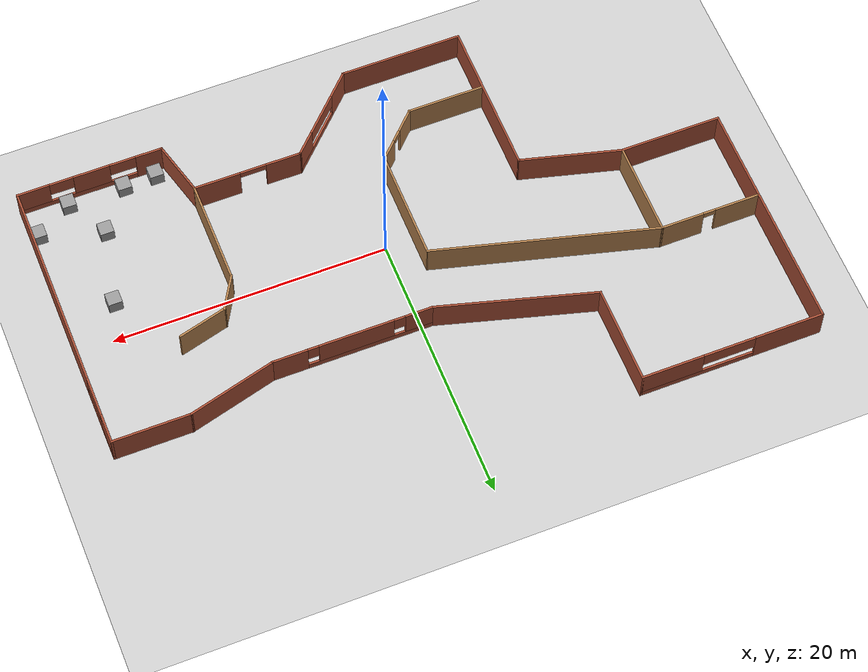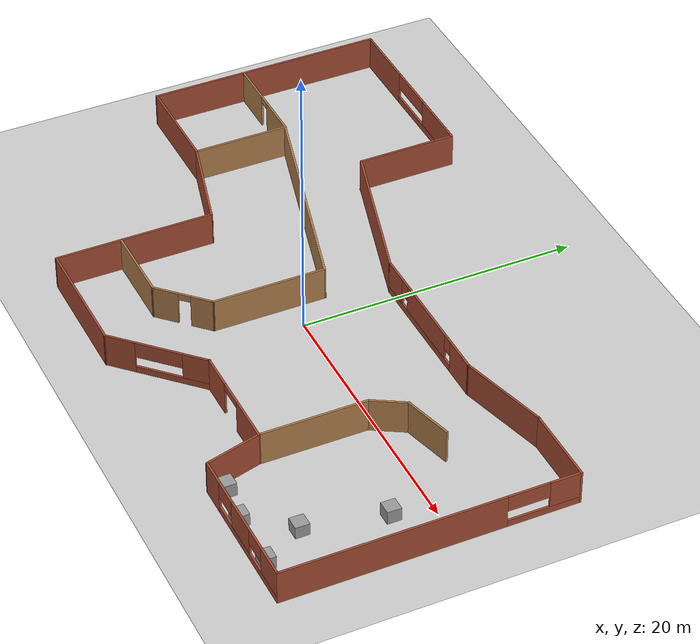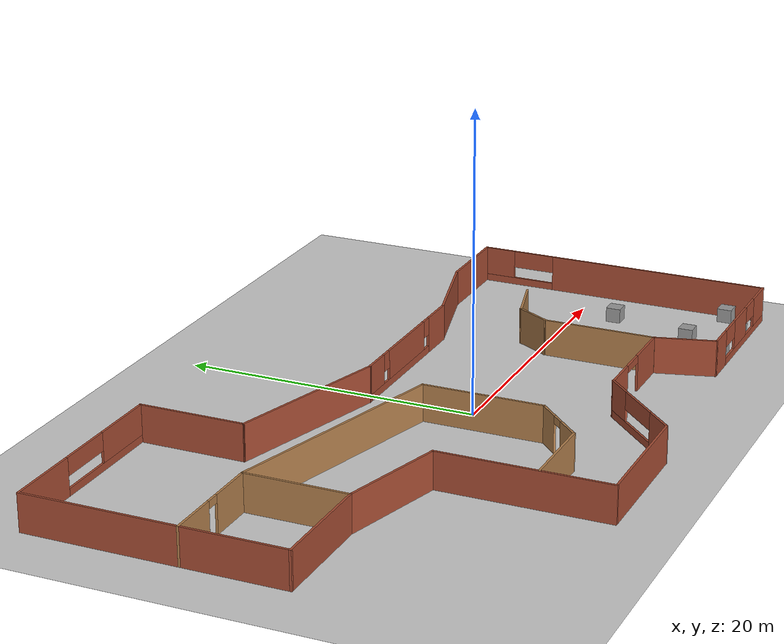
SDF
<sdf version="1.6">
 <world name="default">
  <light name="sun" type="directional">
   <pose>0 0 10 0 -0 0</pose>
   <diffuse>0.8 0.8 0.8 1</diffuse>
   <specular>0.2 0.2 0.2 1</specular>
   <attenuation>
    <range>1000</range>
    <constant>0.9</constant>
    <linear>0.01</linear>
    <quadratic>0.001</quadratic>
   </attenuation>
   <direction>-0.5 0.1 -0.9</direction>
  </light>
  <model name="ground_plane">
   <static>1</static>
   <link name="link">
    <collision name="collision">
     <geometry><plane><normal>0 0 1</normal><size>100 100</size></plane></geometry>
     <surface>
      <contact><collide_bitmask>65535</collide_bitmask></contact>
      <friction><ode><mu>100</mu><mu2>50</mu2></ode></friction>
     </surface>
    </collision>
    <visual name="visual">
     <cast_shadows>0</cast_shadows>
     <geometry><plane><normal>0 0 1</normal><size>100 100</size></plane></geometry>
     <material>
      <script><uri>file://media/materials/scripts/gazebo.material</uri><name>Gazebo/Grey</name></script>
     </material>
    </visual>
   </link>
  </model>
  <gravity>0 0 -9.8</gravity>
  <magnetic_field>6e-06 2.3e-05 -4.2e-05</magnetic_field>
  <atmosphere type="adiabatic"/>
  <physics name="default_physics" default="0" type="ode">
   <max_step_size>0.001</max_step_size>
   <real_time_factor>1</real_time_factor>
   <real_time_update_rate>1000</real_time_update_rate>
  </physics>
  <scene><ambient>0.4 0.4 0.4 1</ambient><background>0.7 0.7 0.7 1</background><shadows>1</shadows></scene>
  <audio><device>default</device></audio>
  <spherical_coordinates>
   <surface_model>EARTH_WGS84</surface_model>
   <latitude_deg>0</latitude_deg>
   <longitude_deg>0</longitude_deg>
   <elevation>0</elevation>
   <heading_deg>0</heading_deg>
  </spherical_coordinates>
  <model name="apartment_1">
   <pose>-1.25367 1.81139 0 0 -0 0</pose>
   <link name="Wall_0">
    <collision name="Wall_0_Collision">
     <geometry><box><size>11.5 0.15 2.5</size></box></geometry>
     <pose>0 0 1.25 0 -0 0</pose>
    </collision>
    <visual name="Wall_0_Visual">
     <pose>0 0 1.25 0 -0 0</pose>
     <geometry><box><size>11.5 0.15 2.5</size></box></geometry>
     <material>
      <script><uri>file://media/materials/scripts/gazebo.material</uri><name>Gazebo/Bricks</name></script>
      <ambient>1 1 1 1</ambient>
     </material>
     <meta><layer>0</layer></meta>
    </visual>
    <pose>-9.55442 -9.48563 0 0 -0 -1.5708</pose>
   </link>
   <link name="Wall_1">
    <collision name="Wall_1_Collision">
     <geometry><box><size>9 0.15 2.5</size></box></geometry>
     <pose>0 0 1.25 0 -0 0</pose>
    </collision>
    <visual name="Wall_1_Visual">
     <pose>0 0 1.25 0 -0 0</pose>
     <geometry><box><size>9 0.15 2.5</size></box></geometry>
     <material>
      <script><uri>file://media/materials/scripts/gazebo.material</uri><name>Gazebo/Bricks</name></script>
      <ambient>1 1 1 1</ambient>
     </material>
     <meta><layer>0</layer></meta>
    </visual>
    <pose>-5.12942 -15.1606 0 0 -0 0</pose>
   </link>
   <link name="Wall_15">
    <collision name="Wall_15_Collision">
     <geometry><box><size>7.5 0.15 2.5</size></box></geometry>
     <pose>0 0 1.25 0 -0 0</pose>
    </collision>
    <visual name="Wall_15_Visual">
     <pose>0 0 1.25 0 -0 0</pose>
     <geometry><box><size>7.5 0.15 2.5</size></box></geometry>
     <material>
      <script><uri>file://media/materials/scripts/gazebo.material</uri><name>Gazebo/Bricks</name></script>
      <ambient>1 1 1 1</ambient>
     </material>
     <meta><layer>0</layer></meta>
    </visual>
    <pose>-13.1042 -2.85947 0 0 -0 2.87979</pose>
   </link>
   <link name="Wall_16">
    <collision name="Wall_16_Collision">
     <geometry><box><size>7.5 0.15 2.5</size></box></geometry>
     <pose>0 0 1.25 0 -0 0</pose>
    </collision>
    <visual name="Wall_16_Visual">
     <pose>0 0 1.25 0 -0 0</pose>
     <geometry><box><size>7.5 0.15 2.5</size></box></geometry>
     <material>
      <script><uri>file://media/materials/scripts/gazebo.material</uri><name>Gazebo/Bricks</name></script>
      <ambient>1 1 1 1</ambient>
     </material>
     <meta><layer>0</layer></meta>
    </visual>
    <pose>-20.329 -1.90831 0 0 -0 3.14159</pose>
   </link>
   <link name="Wall_17">
    <collision name="Wall_17_Collision">
     <geometry><box><size>17.25 0.15 2.5</size></box></geometry>
     <pose>0 0 1.25 0 -0 0</pose>
    </collision>
    <visual name="Wall_17_Visual">
     <pose>0 0 1.25 0 -0 0</pose>
     <geometry><box><size>17.25 0.15 2.5</size></box></geometry>
     <material>
      <script><uri>file://media/materials/scripts/gazebo.material</uri><name>Gazebo/Bricks</name></script>
      <ambient>1 1 1 1</ambient>
     </material>
     <meta><layer>0</layer></meta>
    </visual>
    <pose>-24.004 6.64169 0 0 -0 1.5708</pose>
   </link>
   <link name="Wall_18">
    <pose>-17.329 15.1917 0 0 -0 0</pose>
    <visual name="Wall_18_Visual_0">
     <pose>-4.20454 0 1.25 0 -0 0</pose>
     <geometry><box><size>5.09092 0.15 2.5</size></box></geometry>
     <material>
      <script><uri>file://media/materials/scripts/gazebo.material</uri><name>Gazebo/Bricks</name></script>
      <ambient>1 1 1 1</ambient>
     </material>
     <meta><layer>0</layer></meta>
    </visual>
    <collision name="Wall_18_Collision_0">
     <geometry><box><size>5.09092 0.15 2.5</size></box></geometry>
     <pose>-4.20454 0 1.25 0 -0 0</pose>
    </collision>
    <visual name="Wall_18_Visual_1">
     <pose>2.54546 0 0.25 0 -0 0</pose>
     <geometry><box><size>8.40908 0.15 0.5</size></box></geometry>
     <material>
      <script><uri>file://media/materials/scripts/gazebo.material</uri><name>Gazebo/Bricks</name></script>
      <ambient>1 1 1 1</ambient>
     </material>
     <meta><layer>0</layer></meta>
    </visual>
    <collision name="Wall_18_Collision_1">
     <geometry><box><size>8.40908 0.15 0.5</size></box></geometry>
     <pose>2.54546 0 0.25 0 -0 0</pose>
    </collision>
    <visual name="Wall_18_Visual_2">
     <pose>4.45082 0 1.5 0 -0 0</pose>
     <geometry><box><size>4.59837 0.15 2</size></box></geometry>
     <material>
      <script><uri>file://media/materials/scripts/gazebo.material</uri><name>Gazebo/Bricks</name></script>
      <ambient>1 1 1 1</ambient>
     </material>
     <meta><layer>0</layer></meta>
    </visual>
    <collision name="Wall_18_Collision_2">
     <geometry><box><size>4.59837 0.15 2</size></box></geometry>
     <pose>4.45082 0 1.5 0 -0 0</pose>
    </collision>
    <visual name="Wall_18_Visual_3">
     <pose>0.246279 0 1.9 0 -0 0</pose>
     <geometry><box><size>3.81071 0.15 1.2</size></box></geometry>
     <material>
      <script><uri>file://media/materials/scripts/gazebo.material</uri><name>Gazebo/Bricks</name></script>
      <ambient>1 1 1 1</ambient>
     </material>
     <meta><layer>0</layer></meta>
    </visual>
    <collision name="Wall_18_Collision_3">
     <geometry><box><size>3.81071 0.15 1.2</size></box></geometry>
     <pose>0.246279 0 1.9 0 -0 0</pose>
    </collision>
   </link>
   <link name="Wall_19">
    <collision name="Wall_19_Collision">
     <geometry><box><size>7.25 0.15 2.5</size></box></geometry>
     <pose>0 0 1.25 0 -0 0</pose>
    </collision>
    <visual name="Wall_19_Visual">
     <pose>0 0 1.25 0 -0 0</pose>
     <geometry><box><size>7.25 0.15 2.5</size></box></geometry>
     <material>
      <script><uri>file://media/materials/scripts/gazebo.material</uri><name>Gazebo/Bricks</name></script>
      <ambient>1 1 1 1</ambient>
     </material>
     <meta><layer>0</layer></meta>
    </visual>
    <pose>-10.654 11.6417 0 0 -0 -1.5708</pose>
   </link>
   <link name="Wall_2">
    <pose>1.8942 -12.562 0 0 -0 0.785398</pose>
    <visual name="Wall_2_Visual_0">
     <pose>-2.6428 0 1.25 0 -0 0</pose>
     <geometry><box><size>2.21439 0.15 2.5</size></box></geometry>
     <material>
      <script><uri>file://media/materials/scripts/gazebo.material</uri><name>Gazebo/Bricks</name></script>
      <ambient>1 1 1 1</ambient>
     </material>
     <meta><layer>0</layer></meta>
    </visual>
    <collision name="Wall_2_Collision_0">
     <geometry><box><size>2.21439 0.15 2.5</size></box></geometry>
     <pose>-2.6428 0 1.25 0 -0 0</pose>
    </collision>
    <visual name="Wall_2_Visual_1">
     <pose>1.1072 0 0.25 0 -0 0</pose>
     <geometry><box><size>5.28561 0.15 0.5</size></box></geometry>
     <material>
      <script><uri>file://media/materials/scripts/gazebo.material</uri><name>Gazebo/Bricks</name></script>
      <ambient>1 1 1 1</ambient>
     </material>
     <meta><layer>0</layer></meta>
    </visual>
    <collision name="Wall_2_Collision_1">
     <geometry><box><size>5.28561 0.15 0.5</size></box></geometry>
     <pose>1.1072 0 0.25 0 -0 0</pose>
    </collision>
    <visual name="Wall_2_Visual_2">
     <pose>2.77299 0 1.5 0 -0 0</pose>
     <geometry><box><size>1.95401 0.15 2</size></box></geometry>
     <material>
      <script><uri>file://media/materials/scripts/gazebo.material</uri><name>Gazebo/Bricks</name></script>
      <ambient>1 1 1 1</ambient>
     </material>
     <meta><layer>0</layer></meta>
    </visual>
    <collision name="Wall_2_Collision_2">
     <geometry><box><size>1.95401 0.15 2</size></box></geometry>
     <pose>2.77299 0 1.5 0 -0 0</pose>
    </collision>
    <visual name="Wall_2_Visual_3">
     <pose>0.130189 0 1.9 0 -0 0</pose>
     <geometry><box><size>3.3316 0.15 1.2</size></box></geometry>
     <material>
      <script><uri>file://media/materials/scripts/gazebo.material</uri><name>Gazebo/Bricks</name></script>
      <ambient>1 1 1 1</ambient>
     </material>
     <meta><layer>0</layer></meta>
    </visual>
    <collision name="Wall_2_Collision_3">
     <geometry><box><size>3.3316 0.15 1.2</size></box></geometry>
     <pose>0.130189 0 1.9 0 -0 0</pose>
    </collision>
   </link>
   <link name="Wall_20">
    <collision name="Wall_20_Collision">
     <geometry><box><size>11.6646 0.15 2.5</size></box></geometry>
     <pose>0 0 1.25 0 -0 0</pose>
    </collision>
    <visual name="Wall_20_Visual">
     <pose>0 0 1.25 0 -0 0</pose>
     <geometry><box><size>11.6646 0.15 2.5</size></box></geometry>
     <material>
      <script><uri>file://media/materials/scripts/gazebo.material</uri><name>Gazebo/Bricks</name></script>
      <ambient>1 1 1 1</ambient>
     </material>
     <meta><layer>0</layer></meta>
    </visual>
    <pose>-5.11256 6.5299 0 0 -0 -0.274714</pose>
   </link>
   <link name="Wall_22">
    <collision name="Wall_22_Collision">
     <geometry><box><size>7.75 0.15 2.5</size></box></geometry>
     <pose>0 0 1.25 0 -0 0</pose>
    </collision>
    <visual name="Wall_22_Visual">
     <pose>0 0 1.25 0 -0 0</pose>
     <geometry><box><size>7.75 0.15 2.5</size></box></geometry>
     <material>
      <script><uri>file://media/materials/scripts/gazebo.material</uri><name>Gazebo/Wood</name></script>
      <ambient>1 1 1 1</ambient>
     </material>
     <meta><layer>0</layer></meta>
    </visual>
    <pose>12.3428 -6.16339 0 0 -0 1.5708</pose>
   </link>
   <link name="Wall_3">
    <pose>8.41782 -9.96339 0 0 -0 0</pose>
    <visual name="Wall_3_Visual_0">
     <pose>-2.68299 0 1.25 0 -0 0</pose>
     <geometry><box><size>2.63402 0.15 2.5</size></box></geometry>
     <material>
      <script><uri>file://media/materials/scripts/gazebo.material</uri><name>Gazebo/Bricks</name></script>
      <ambient>1 1 1 1</ambient>
     </material>
     <meta><layer>0</layer></meta>
    </visual>
    <collision name="Wall_3_Collision_0">
     <geometry><box><size>2.63402 0.15 2.5</size></box></geometry>
     <pose>-2.68299 0 1.25 0 -0 0</pose>
    </collision>
    <visual name="Wall_3_Visual_1">
     <pose>2.27617 0 1.25 0 -0 0</pose>
     <geometry><box><size>3.44766 0.15 2.5</size></box></geometry>
     <material>
      <script><uri>file://media/materials/scripts/gazebo.material</uri><name>Gazebo/Bricks</name></script>
      <ambient>1 1 1 1</ambient>
     </material>
     <meta><layer>0</layer></meta>
    </visual>
    <collision name="Wall_3_Collision_1">
     <geometry><box><size>3.44766 0.15 2.5</size></box></geometry>
     <pose>2.27617 0 1.25 0 -0 0</pose>
    </collision>
    <visual name="Wall_3_Visual_2">
     <pose>-0.406822 0 2.25 0 -0 0</pose>
     <geometry><box><size>1.91833 0.15 0.5</size></box></geometry>
     <material>
      <script><uri>file://media/materials/scripts/gazebo.material</uri><name>Gazebo/Bricks</name></script>
      <ambient>1 1 1 1</ambient>
     </material>
     <meta><layer>0</layer></meta>
    </visual>
    <collision name="Wall_3_Collision_2">
     <geometry><box><size>1.91833 0.15 0.5</size></box></geometry>
     <pose>-0.406822 0 2.25 0 -0 0</pose>
    </collision>
   </link>
   <link name="Wall_31">
    <collision name="Wall_31_Collision">
     <geometry><box><size>7 0.15 2.5</size></box></geometry>
     <pose>0 0 1.25 0 -0 0</pose>
    </collision>
    <visual name="Wall_31_Visual">
     <pose>0 0 1.25 0 -0 0</pose>
     <geometry><box><size>7 0.15 2.5</size></box></geometry>
     <material>
      <script><uri>file://media/materials/scripts/gazebo.material</uri><name>Gazebo/Wood</name></script>
      <ambient>1 1 1 1</ambient>
     </material>
     <meta><layer>0</layer></meta>
    </visual>
    <pose>-16.654 1.51669 0 0 -0 1.5708</pose>
   </link>
   <link name="Wall_32">
    <collision name="Wall_32_Collision">
     <geometry><box><size>16.5 0.15 2.5</size></box></geometry>
     <pose>0 0 1.25 0 -0 0</pose>
    </collision>
    <visual name="Wall_32_Visual">
     <pose>0 0 1.25 0 -0 0</pose>
     <geometry><box><size>16.5 0.15 2.5</size></box></geometry>
     <material>
      <script><uri>file://media/materials/scripts/gazebo.material</uri><name>Gazebo/Wood</name></script>
      <ambient>1 1 1 1</ambient>
     </material>
     <meta><layer>0</layer></meta>
    </visual>
    <pose>-8.75753 2.82585 0 0 -0 -0.261799</pose>
   </link>
   <link name="Wall_33">
    <collision name="Wall_33_Collision">
     <geometry><box><size>8.25 0.15 2.5</size></box></geometry>
     <pose>0 0 1.25 0 -0 0</pose>
    </collision>
    <visual name="Wall_33_Visual">
     <pose>0 0 1.25 0 -0 0</pose>
     <geometry><box><size>8.25 0.15 2.5</size></box></geometry>
     <material>
      <script><uri>file://media/materials/scripts/gazebo.material</uri><name>Gazebo/Wood</name></script>
      <ambient>1 1 1 1</ambient>
     </material>
     <meta><layer>0</layer></meta>
    </visual>
    <pose>-0.861087 -3.34 0 0 -0 -1.5708</pose>
   </link>
   <link name="Wall_34">
    <pose>-2.39904 -8.92796 0 0 -0 -2.35619</pose>
    <visual name="Wall_34_Visual_0">
     <pose>-1.40435 0 1.25 0 -0 0</pose>
     <geometry><box><size>1.6913 0.15 2.5</size></box></geometry>
     <material>
      <script><uri>file://media/materials/scripts/gazebo.material</uri><name>Gazebo/Wood</name></script>
      <ambient>1 1 1 1</ambient>
     </material>
     <meta><layer>0</layer></meta>
    </visual>
    <collision name="Wall_34_Collision_0">
     <geometry><box><size>1.6913 0.15 2.5</size></box></geometry>
     <pose>-1.40435 0 1.25 0 -0 0</pose>
    </collision>
    <visual name="Wall_34_Visual_1">
     <pose>1.29565 0 1.25 0 -0 0</pose>
     <geometry><box><size>1.9087 0.15 2.5</size></box></geometry>
     <material>
      <script><uri>file://media/materials/scripts/gazebo.material</uri><name>Gazebo/Wood</name></script>
      <ambient>1 1 1 1</ambient>
     </material>
     <meta><layer>0</layer></meta>
    </visual>
    <collision name="Wall_34_Collision_1">
     <geometry><box><size>1.9087 0.15 2.5</size></box></geometry>
     <pose>1.29565 0 1.25 0 -0 0</pose>
    </collision>
    <visual name="Wall_34_Visual_2">
     <pose>-0.108703 0 2.25 0 -0 0</pose>
     <geometry><box><size>0.9 0.15 0.5</size></box></geometry>
     <material>
      <script><uri>file://media/materials/scripts/gazebo.material</uri><name>Gazebo/Wood</name></script>
      <ambient>1 1 1 1</ambient>
     </material>
     <meta><layer>0</layer></meta>
    </visual>
    <collision name="Wall_34_Collision_2">
     <geometry><box><size>0.9 0.15 0.5</size></box></geometry>
     <pose>-0.108703 0 2.25 0 -0 0</pose>
    </collision>
   </link>
   <link name="Wall_35">
    <collision name="Wall_35_Collision">
     <geometry><box><size>5.75 0.15 2.5</size></box></geometry>
     <pose>0 0 1.25 0 -0 0</pose>
    </collision>
    <visual name="Wall_35_Visual">
     <pose>0 0 1.25 0 -0 0</pose>
     <geometry><box><size>5.75 0.15 2.5</size></box></geometry>
     <material>
      <script><uri>file://media/materials/scripts/gazebo.material</uri><name>Gazebo/Wood</name></script>
      <ambient>1 1 1 1</ambient>
     </material>
     <meta><layer>0</layer></meta>
    </visual>
    <pose>-6.737 -10.4659 0 0 -0 3.14159</pose>
   </link>
   <link name="Wall_4">
    <collision name="Wall_4_Collision">
     <geometry><box><size>4.25 0.15 2.5</size></box></geometry>
     <pose>0 0 1.25 0 -0 0</pose>
    </collision>
    <visual name="Wall_4_Visual">
     <pose>0 0 1.25 0 -0 0</pose>
     <geometry><box><size>4.25 0.15 2.5</size></box></geometry>
     <material>
      <script><uri>file://media/materials/scripts/gazebo.material</uri><name>Gazebo/Bricks</name></script>
      <ambient>1 1 1 1</ambient>
     </material>
     <meta><layer>0</layer></meta>
    </visual>
    <pose>12.8734 -11.9435 0 0 -0 -1.309</pose>
   </link>
   <link name="Wall_5">
    <pose>18.704 -13.9237 0 0 -0 0</pose>
    <visual name="Wall_5_Visual_0">
     <pose>-4.35791 0 1.25 0 -0 0</pose>
     <geometry><box><size>2.03418 0.15 2.5</size></box></geometry>
     <material>
      <script><uri>file://media/materials/scripts/gazebo.material</uri><name>Gazebo/Bricks</name></script>
      <ambient>1 1 1 1</ambient>
     </material>
     <meta><layer>0</layer></meta>
    </visual>
    <collision name="Wall_5_Collision_0">
     <geometry><box><size>2.03418 0.15 2.5</size></box></geometry>
     <pose>-4.35791 0 1.25 0 -0 0</pose>
    </collision>
    <visual name="Wall_5_Visual_1">
     <pose>1.01709 0 0.25 0 -0 0</pose>
     <geometry><box><size>8.71582 0.15 0.5</size></box></geometry>
     <material>
      <script><uri>file://media/materials/scripts/gazebo.material</uri><name>Gazebo/Bricks</name></script>
      <ambient>1 1 1 1</ambient>
     </material>
     <meta><layer>0</layer></meta>
    </visual>
    <collision name="Wall_5_Collision_1">
     <geometry><box><size>8.71582 0.15 0.5</size></box></geometry>
     <pose>1.01709 0 0.25 0 -0 0</pose>
    </collision>
    <visual name="Wall_5_Visual_2">
     <pose>-0.09576 0 1.5 0 -0 0</pose>
     <geometry><box><size>2.66959 0.15 2</size></box></geometry>
     <material>
      <script><uri>file://media/materials/scripts/gazebo.material</uri><name>Gazebo/Bricks</name></script>
      <ambient>1 1 1 1</ambient>
     </material>
     <meta><layer>0</layer></meta>
    </visual>
    <collision name="Wall_5_Collision_2">
     <geometry><box><size>2.66959 0.15 2</size></box></geometry>
     <pose>-0.09576 0 1.5 0 -0 0</pose>
    </collision>
    <visual name="Wall_5_Visual_3">
     <pose>4.18119 0 1.5 0 -0 0</pose>
     <geometry><box><size>2.38761 0.15 2</size></box></geometry>
     <material>
      <script><uri>file://media/materials/scripts/gazebo.material</uri><name>Gazebo/Bricks</name></script>
      <ambient>1 1 1 1</ambient>
     </material>
     <meta><layer>0</layer></meta>
    </visual>
    <collision name="Wall_5_Collision_3">
     <geometry><box><size>2.38761 0.15 2</size></box></geometry>
     <pose>4.18119 0 1.5 0 -0 0</pose>
    </collision>
    <visual name="Wall_5_Visual_4">
     <pose>-2.38569 0 1.9 0 -0 0</pose>
     <geometry><box><size>1.91027 0.15 1.2</size></box></geometry>
     <material>
      <script><uri>file://media/materials/scripts/gazebo.material</uri><name>Gazebo/Bricks</name></script>
      <ambient>1 1 1 1</ambient>
     </material>
     <meta><layer>0</layer></meta>
    </visual>
    <collision name="Wall_5_Collision_4">
     <geometry><box><size>1.91027 0.15 1.2</size></box></geometry>
     <pose>-2.38569 0 1.9 0 -0 0</pose>
    </collision>
    <visual name="Wall_5_Visual_5">
     <pose>2.11321 0 1.9 0 -0 0</pose>
     <geometry><box><size>1.74836 0.15 1.2</size></box></geometry>
     <material>
      <script><uri>file://media/materials/scripts/gazebo.material</uri><name>Gazebo/Bricks</name></script>
      <ambient>1 1 1 1</ambient>
     </material>
     <meta><layer>0</layer></meta>
    </visual>
    <collision name="Wall_5_Collision_5">
     <geometry><box><size>1.74836 0.15 1.2</size></box></geometry>
     <pose>2.11321 0 1.9 0 -0 0</pose>
    </collision>
   </link>
   <link name="Wall_6">
    <pose>24.004 -3.62369 0 0 -0 1.5708</pose>
    <visual name="Wall_6_Visual_0">
     <pose>-2.59403 0 1.25 0 -0 0</pose>
     <geometry><box><size>15.5619 0.15 2.5</size></box></geometry>
     <material>
      <script><uri>file://media/materials/scripts/gazebo.material</uri><name>Gazebo/Bricks</name></script>
      <ambient>1 1 1 1</ambient>
     </material>
     <meta><layer>0</layer></meta>
    </visual>
    <collision name="Wall_6_Collision_0">
     <geometry><box><size>15.5619 0.15 2.5</size></box></geometry>
     <pose>-2.59403 0 1.25 0 -0 0</pose>
    </collision>
    <visual name="Wall_6_Visual_1">
     <pose>7.78097 0 0.25 0 -0 0</pose>
     <geometry><box><size>5.18806 0.15 0.5</size></box></geometry>
     <material>
      <script><uri>file://media/materials/scripts/gazebo.material</uri><name>Gazebo/Bricks</name></script>
      <ambient>1 1 1 1</ambient>
     </material>
     <meta><layer>0</layer></meta>
    </visual>
    <collision name="Wall_6_Collision_1">
     <geometry><box><size>5.18806 0.15 0.5</size></box></geometry>
     <pose>7.78097 0 0.25 0 -0 0</pose>
    </collision>
    <visual name="Wall_6_Visual_2">
     <pose>9.25102 0 1.5 0 -0 0</pose>
     <geometry><box><size>2.24796 0.15 2</size></box></geometry>
     <material>
      <script><uri>file://media/materials/scripts/gazebo.material</uri><name>Gazebo/Bricks</name></script>
      <ambient>1 1 1 1</ambient>
     </material>
     <meta><layer>0</layer></meta>
    </visual>
    <collision name="Wall_6_Collision_2">
     <geometry><box><size>2.24796 0.15 2</size></box></geometry>
     <pose>9.25102 0 1.5 0 -0 0</pose>
    </collision>
    <visual name="Wall_6_Visual_3">
     <pose>6.65699 0 1.9 0 -0 0</pose>
     <geometry><box><size>2.9401 0.15 1.2</size></box></geometry>
     <material>
      <script><uri>file://media/materials/scripts/gazebo.material</uri><name>Gazebo/Bricks</name></script>
      <ambient>1 1 1 1</ambient>
     </material>
     <meta><layer>0</layer></meta>
    </visual>
    <collision name="Wall_6_Collision_3">
     <geometry><box><size>2.9401 0.15 1.2</size></box></geometry>
     <pose>6.65699 0 1.9 0 -0 0</pose>
    </collision>
   </link>
   <link name="Wall_60">
    <pose>-20.329 4.94169 0 0 -0 3.14159</pose>
    <visual name="Wall_60_Visual_0">
     <pose>-2.14907 0 1.25 0 -0 0</pose>
     <geometry><box><size>3.20186 0.15 2.5</size></box></geometry>
     <material>
      <script><uri>file://media/materials/scripts/gazebo.material</uri><name>Gazebo/Wood</name></script>
      <ambient>1 1 1 1</ambient>
     </material>
     <meta><layer>0</layer></meta>
    </visual>
    <collision name="Wall_60_Collision_0">
     <geometry><box><size>3.20186 0.15 2.5</size></box></geometry>
     <pose>-2.14907 0 1.25 0 -0 0</pose>
    </collision>
    <visual name="Wall_60_Visual_1">
     <pose>2.05093 0 1.25 0 -0 0</pose>
     <geometry><box><size>3.39814 0.15 2.5</size></box></geometry>
     <material>
      <script><uri>file://media/materials/scripts/gazebo.material</uri><name>Gazebo/Wood</name></script>
      <ambient>1 1 1 1</ambient>
     </material>
     <meta><layer>0</layer></meta>
    </visual>
    <collision name="Wall_60_Collision_1">
     <geometry><box><size>3.39814 0.15 2.5</size></box></geometry>
     <pose>2.05093 0 1.25 0 -0 0</pose>
    </collision>
    <visual name="Wall_60_Visual_2">
     <pose>-0.098143 0 2.25 0 -0 0</pose>
     <geometry><box><size>0.9 0.15 0.5</size></box></geometry>
     <material>
      <script><uri>file://media/materials/scripts/gazebo.material</uri><name>Gazebo/Wood</name></script>
      <ambient>1 1 1 1</ambient>
     </material>
     <meta><layer>0</layer></meta>
    </visual>
    <collision name="Wall_60_Collision_2">
     <geometry><box><size>0.9 0.15 0.5</size></box></geometry>
     <pose>-0.098143 0 2.25 0 -0 0</pose>
    </collision>
   </link>
   <link name="Wall_65">
    <collision name="Wall_65_Collision">
     <geometry><box><size>2.75 0.15 2.5</size></box></geometry>
     <pose>0 0 1.25 0 -0 0</pose>
    </collision>
    <visual name="Wall_65_Visual">
     <pose>0 0 1.25 0 -0 0</pose>
     <geometry><box><size>2.75 0.15 2.5</size></box></geometry>
     <material>
      <script><uri>file://media/materials/scripts/gazebo.material</uri><name>Gazebo/Wood</name></script>
      <ambient>1 1 1 1</ambient>
     </material>
     <meta><layer>0</layer></meta>
    </visual>
    <pose>12.9928 -1.23756 0 0 -0 1.0472</pose>
   </link>
   <link name="Wall_66">
    <collision name="Wall_66_Collision">
     <geometry><box><size>3.75 0.15 2.5</size></box></geometry>
     <pose>0 0 1.25 0 -0 0</pose>
    </collision>
    <visual name="Wall_66_Visual">
     <pose>0 0 1.25 0 -0 0</pose>
     <geometry><box><size>3.75 0.15 2.5</size></box></geometry>
     <material>
      <script><uri>file://media/materials/scripts/gazebo.material</uri><name>Gazebo/Wood</name></script>
      <ambient>1 1 1 1</ambient>
     </material>
     <meta><layer>0</layer></meta>
    </visual>
    <pose>15.3815 0.354148 0 0 -0 0.261799</pose>
   </link>
   <link name="Wall_7">
    <collision name="Wall_7_Collision">
     <geometry><box><size>5.75 0.15 2.5</size></box></geometry>
     <pose>0 0 1.25 0 -0 0</pose>
    </collision>
    <visual name="Wall_7_Visual">
     <pose>0 0 1.25 0 -0 0</pose>
     <geometry><box><size>5.75 0.15 2.5</size></box></geometry>
     <material>
      <script><uri>file://media/materials/scripts/gazebo.material</uri><name>Gazebo/Bricks</name></script>
      <ambient>1 1 1 1</ambient>
     </material>
     <meta><layer>0</layer></meta>
    </visual>
    <pose>21.204 6.67631 0 0 -0 3.14159</pose>
   </link>
   <link name="Wall_8">
    <collision name="Wall_8_Collision">
     <geometry><box><size>6.75 0.15 2.5</size></box></geometry>
     <pose>0 0 1.25 0 -0 0</pose>
    </collision>
    <visual name="Wall_8_Visual">
     <pose>0 0 1.25 0 -0 0</pose>
     <geometry><box><size>6.75 0.15 2.5</size></box></geometry>
     <material>
      <script><uri>file://media/materials/scripts/gazebo.material</uri><name>Gazebo/Bricks</name></script>
      <ambient>1 1 1 1</ambient>
     </material>
     <meta><layer>0</layer></meta>
    </visual>
    <pose>15.2164 5.82221 0 0 -0 -2.87979</pose>
   </link>
   <link name="Wall_9">
    <pose>6.22886 4.96811 0 0 -0 3.14159</pose>
    <visual name="Wall_9_Visual_0">
     <pose>-4.5743 0 1.25 0 -0 0</pose>
     <geometry><box><size>2.6014 0.15 2.5</size></box></geometry>
     <material>
      <script><uri>file://media/materials/scripts/gazebo.material</uri><name>Gazebo/Bricks</name></script>
      <ambient>1 1 1 1</ambient>
     </material>
     <meta><layer>0</layer></meta>
    </visual>
    <collision name="Wall_9_Collision_0">
     <geometry><box><size>2.6014 0.15 2.5</size></box></geometry>
     <pose>-4.5743 0 1.25 0 -0 0</pose>
    </collision>
    <visual name="Wall_9_Visual_1">
     <pose>1.3007 0 0.25 0 -0 0</pose>
     <geometry><box><size>9.1486 0.15 0.5</size></box></geometry>
     <material>
      <script><uri>file://media/materials/scripts/gazebo.material</uri><name>Gazebo/Bricks</name></script>
      <ambient>1 1 1 1</ambient>
     </material>
     <meta><layer>0</layer></meta>
    </visual>
    <collision name="Wall_9_Collision_1">
     <geometry><box><size>9.1486 0.15 0.5</size></box></geometry>
     <pose>1.3007 0 0.25 0 -0 0</pose>
    </collision>
    <visual name="Wall_9_Visual_2">
     <pose>0.256292 0 1.5 0 -0 0</pose>
     <geometry><box><size>5.45979 0.15 2</size></box></geometry>
     <material>
      <script><uri>file://media/materials/scripts/gazebo.material</uri><name>Gazebo/Bricks</name></script>
      <ambient>1 1 1 1</ambient>
     </material>
     <meta><layer>0</layer></meta>
    </visual>
    <collision name="Wall_9_Collision_2">
     <geometry><box><size>5.45979 0.15 2</size></box></geometry>
     <pose>0.256292 0 1.5 0 -0 0</pose>
    </collision>
    <visual name="Wall_9_Visual_3">
     <pose>4.83059 0 1.5 0 -0 0</pose>
     <geometry><box><size>2.08881 0.15 2</size></box></geometry>
     <material>
      <script><uri>file://media/materials/scripts/gazebo.material</uri><name>Gazebo/Bricks</name></script>
      <ambient>1 1 1 1</ambient>
     </material>
     <meta><layer>0</layer></meta>
    </visual>
    <collision name="Wall_9_Collision_3">
     <geometry><box><size>2.08881 0.15 2</size></box></geometry>
     <pose>4.83059 0 1.5 0 -0 0</pose>
    </collision>
    <visual name="Wall_9_Visual_4">
     <pose>-2.8736 0 1.9 0 -0 0</pose>
     <geometry><box><size>0.8 0.15 1.2</size></box></geometry>
     <material>
      <script><uri>file://media/materials/scripts/gazebo.material</uri><name>Gazebo/Bricks</name></script>
      <ambient>1 1 1 1</ambient>
     </material>
     <meta><layer>0</layer></meta>
    </visual>
    <collision name="Wall_9_Collision_4">
     <geometry><box><size>0.8 0.15 1.2</size></box></geometry>
     <pose>-2.8736 0 1.9 0 -0 0</pose>
    </collision>
    <visual name="Wall_9_Visual_5">
     <pose>3.38619 0 1.9 0 -0 0</pose>
     <geometry><box><size>0.8 0.15 1.2</size></box></geometry>
     <material>
      <script><uri>file://media/materials/scripts/gazebo.material</uri><name>Gazebo/Bricks</name></script>
      <ambient>1 1 1 1</ambient>
     </material>
     <meta><layer>0</layer></meta>
    </visual>
    <collision name="Wall_9_Collision_5">
     <geometry><box><size>0.8 0.15 1.2</size></box></geometry>
     <pose>3.38619 0 1.9 0 -0 0</pose>
    </collision>
   </link>
   <static>1</static>
  </model>
  <model name="unit_box">
   <pose>19.4708 -11.4236 0.37727 0 -0 -0.015655</pose>
   <link name="link">
    <inertial>
     <mass>1</mass>
     <inertia>
      <ixx>0.166667</ixx>
      <ixy>0</ixy>
      <ixz>0</ixz>
      <iyy>0.166667</iyy>
      <iyz>0</iyz>
      <izz>0.166667</izz>
     </inertia>
    </inertial>
    <collision name="collision"><geometry><box><size>0.999999 1 0.999999</size></box></geometry></collision>
    <visual name="visual">
     <geometry><box><size>0.999999 1 0.999999</size></box></geometry>
     <material>
      <script><name>Gazebo/Grey</name><uri>file://media/materials/scripts/gazebo.material</uri></script>
     </material>
    </visual>
   </link>
  </model>
  <model name="unit_box_0">
   <pose>22.175 -9.77578 0.393141 0.000438 -0 2e-06</pose>
   <link name="unit_box_0::link">
    <inertial>
     <mass>1</mass>
     <inertia>
      <ixx>0.166667</ixx>
      <ixy>0</ixy>
      <ixz>0</ixz>
      <iyy>0.166667</iyy>
      <iyz>0</iyz>
      <izz>0.166667</izz>
     </inertia>
    </inertial>
    <collision name="collision"><geometry><box><size>1 1 0.999996</size></box></geometry></collision>
    <visual name="visual">
     <geometry><box><size>1 1 0.999996</size></box></geometry>
     <material>
      <script><name>Gazebo/Grey</name><uri>file://media/materials/scripts/gazebo.material</uri></script>
     </material>
    </visual>
    <enable_wind>1</enable_wind>
   </link>
  </model>
  <model name="unit_box_1">
   <pose>17.7092 -8.38692 0.350375 5e-06 -0 -0.000842</pose>
   <link name="link">
    <inertial>
     <mass>1</mass>
     <inertia>
      <ixx>0.166667</ixx>
      <ixy>0</ixy>
      <ixz>0</ixz>
      <iyy>0.166667</iyy>
      <iyz>0</iyz>
      <izz>0.166667</izz>
     </inertia>
    </inertial>
    <collision name="collision"><geometry><box><size>1 0.999994 0.999997</size></box></geometry></collision>
    <visual name="visual">
     <geometry><box><size>1 0.999994 0.999997</size></box></geometry>
     <material>
      <script><name>Gazebo/Grey</name><uri>file://media/materials/scripts/gazebo.material</uri></script>
     </material>
    </visual>
   </link>
  </model>
  <model name="unit_box_2">
   <pose>15.3815 -11.3949 0.379077 -0 -0.000321 0.004319</pose>
   <link name="link">
    <inertial>
     <mass>1</mass>
     <inertia>
      <ixx>0.166667</ixx>
      <ixy>0</ixy>
      <ixz>0</ixz>
      <iyy>0.166667</iyy>
      <iyz>0</iyz>
      <izz>0.166667</izz>
     </inertia>
    </inertial>
    <collision name="collision"><geometry><box><size>1 1 1</size></box></geometry></collision>
    <visual name="visual">
     <geometry><box><size>1 1 1</size></box></geometry>
     <material>
      <script><name>Gazebo/Grey</name><uri>file://media/materials/scripts/gazebo.material</uri></script>
     </material>
    </visual>
   </link>
  </model>
  <model name="unit_box_3">
   <pose>13.0395 -11.2263 0.904536 -6e-06 1e-06 0.004599</pose>
   <link name="link">
    <inertial>
     <mass>1</mass>
     <inertia>
      <ixx>0.166667</ixx>
      <ixy>0</ixy>
      <ixz>0</ixz>
      <iyy>0.166667</iyy>
      <iyz>0</iyz>
      <izz>0.166667</izz>
     </inertia>
    </inertial>
    <collision name="collision"><geometry><box><size>1 0.999997 0.999998</size></box></geometry></collision>
    <visual name="visual">
     <geometry><box><size>1 0.999997 0.999998</size></box></geometry>
     <material>
      <script><name>Gazebo/Grey</name><uri>file://media/materials/scripts/gazebo.material</uri></script>
     </material>
    </visual>
   </link>
  </model>
  <model name="unit_box_4">
   <pose>18.9927 -2.73939 0.489902 2e-06 0.002846 0.000673</pose>
   <link name="link">
    <inertial>
     <mass>1</mass>
     <inertia>
      <ixx>0.166667</ixx>
      <ixy>0</ixy>
      <ixz>0</ixz>
      <iyy>0.166667</iyy>
      <iyz>0</iyz>
      <izz>0.166667</izz>
     </inertia>
    </inertial>
    <collision name="collision"><geometry><box><size>0.999997 1 1</size></box></geometry></collision>
    <visual name="visual">
     <geometry><box><size>0.999997 1 1</size></box></geometry>
     <material>
      <script><name>Gazebo/Grey</name><uri>file://media/materials/scripts/gazebo.material</uri></script>
     </material>
    </visual>
   </link>
  </model>
 </world>
</sdf>
